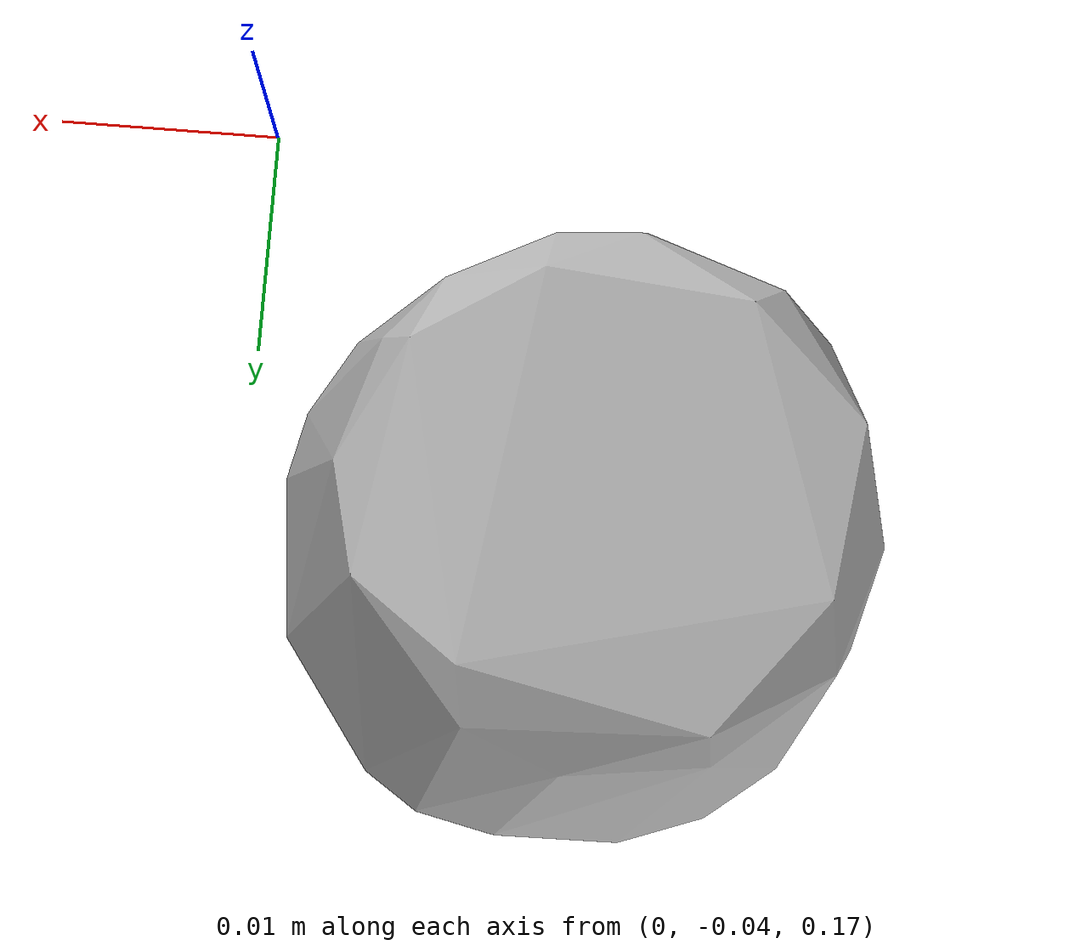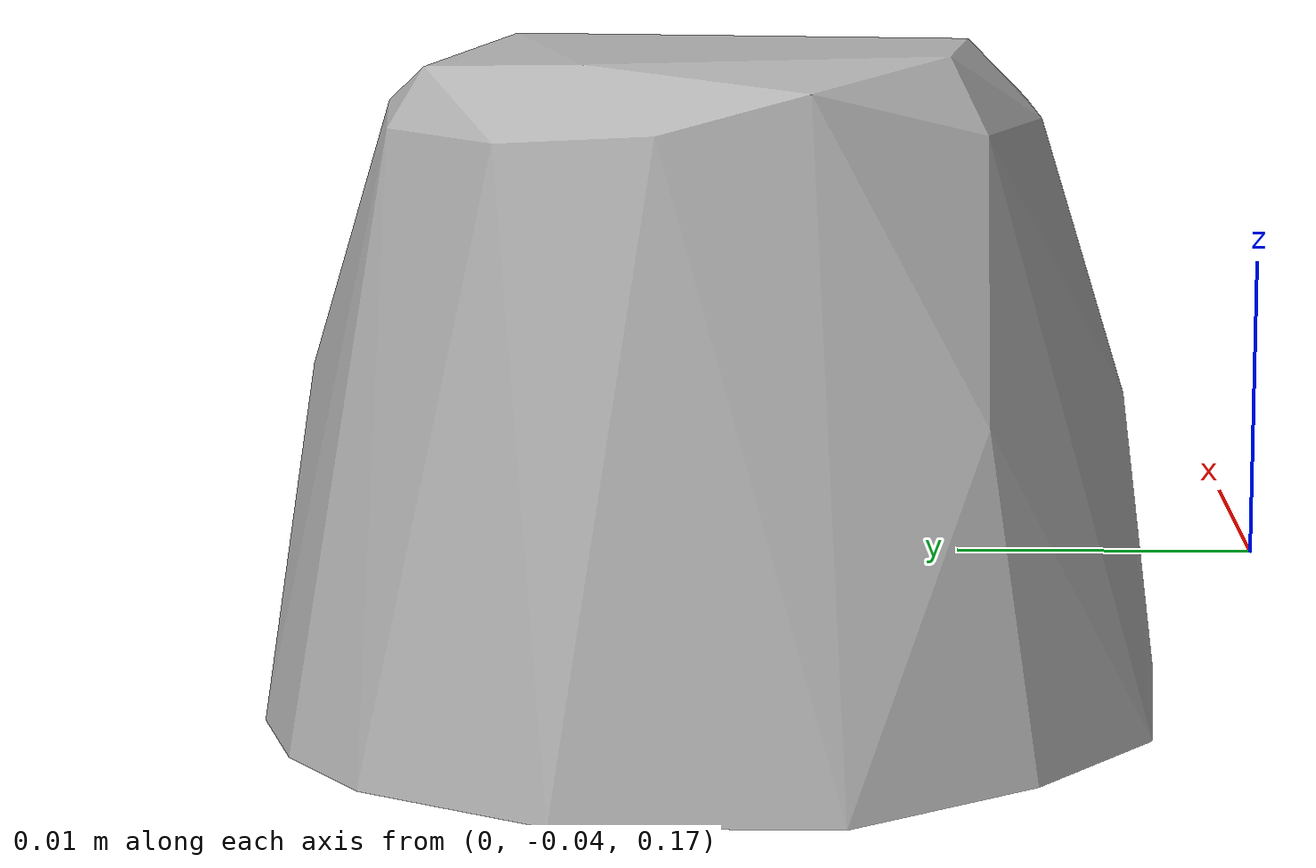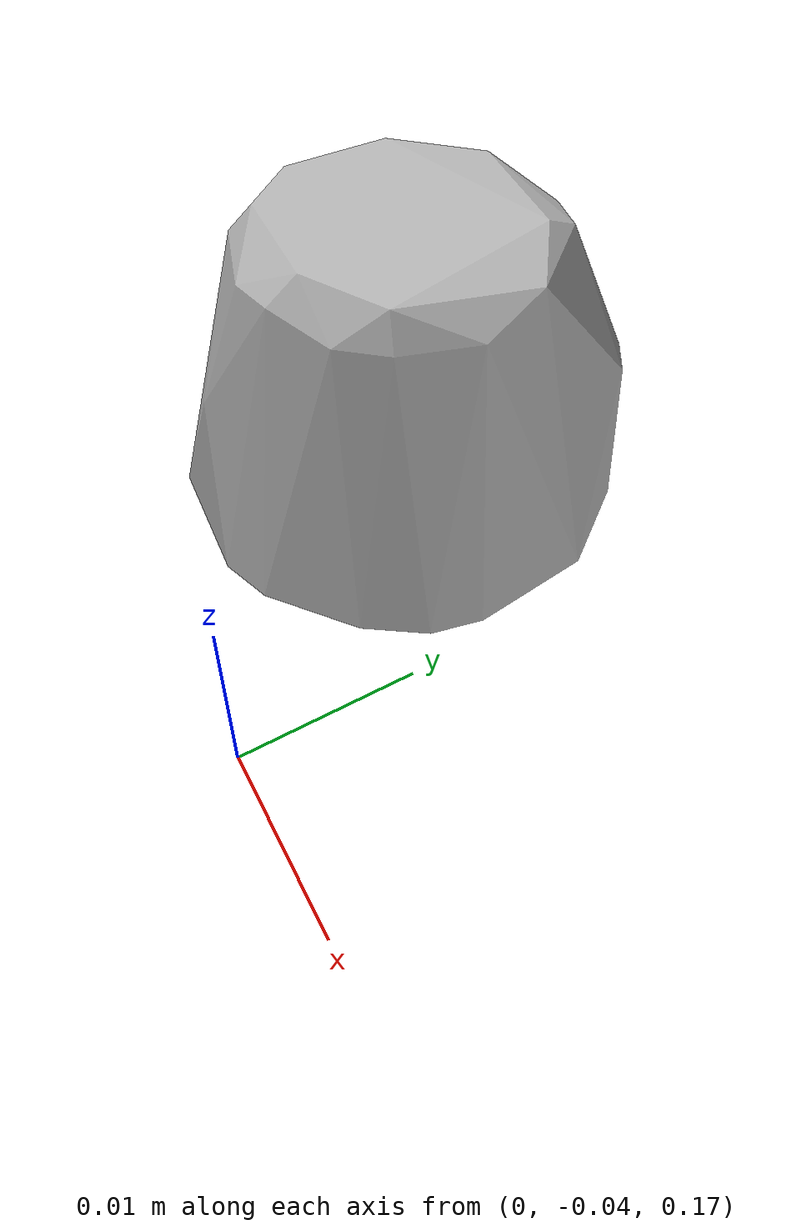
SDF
<?xml version="1.0"?>
<sdf version="1.7">
  <model name="006_mustard_bottle">

    <!-- This file was adapted from the original YCB object dataset. The
    simplified convex collision geometry was generated by Nicholas Pfaff using
    VHACD. -->

    <link name="base_link_mustard">
      <inertial>
        <inertia>
          <ixx>0.0010557</ixx>
          <ixy>5.478e-05</ixy>
          <ixz>-3.4872e-06</ixz>
          <iyy>0.001162</iyy>
          <iyz>-5.1815e-06</iyz>
          <izz>0.00030522</izz>
        </inertia>
        <mass>0.435</mass>
        <pose>-0.015 -0.0231 0.0751 0 0 0</pose>
      </inertial>

      <visual name="visual">
        <geometry>
          <mesh>
            <uri>package://drake_models/ycb/meshes/006_mustard_bottle_textured.gltf</uri>
          </mesh>
        </geometry>
      </visual>

      <collision name="collision_0">
        <geometry>
          <mesh>
            <drake:declare_convex/>
            <uri>package://manipulation/hydro/ycb_mustard_bottle_mesh_pieces/mesh_piece_005.obj</uri>
          </mesh>
        </geometry>

        <drake:proximity_properties>
          <drake:compliant_hydroelastic/>
          <drake:hydroelastic_modulus>1.0e8</drake:hydroelastic_modulus>
        </drake:proximity_properties>
      </collision>

      <collision name="collision_1">
        <geometry>
          <mesh>
            <drake:declare_convex/>
            <uri>package://manipulation/hydro/ycb_mustard_bottle_mesh_pieces/mesh_piece_008.obj</uri>
          </mesh>
        </geometry>

        <drake:proximity_properties>
          <drake:compliant_hydroelastic/>
          <drake:hydroelastic_modulus>1.0e8</drake:hydroelastic_modulus>
        </drake:proximity_properties>
      </collision>

      <collision name="collision_2">
          <geometry>
            <mesh>
              <drake:declare_convex/>
                <uri>package://manipulation/hydro/ycb_mustard_bottle_mesh_pieces/mesh_piece_006.obj</uri>
            </mesh>
          </geometry>

        <drake:proximity_properties>
            <drake:compliant_hydroelastic/>
            <drake:hydroelastic_modulus>1.0e8</drake:hydroelastic_modulus>
        </drake:proximity_properties>
      </collision>

      <collision name="collision_3">
        <geometry>
          <mesh>
            <drake:declare_convex/>
            <uri>ycb_mustard_bottle_mesh_pieces/mesh_piece_004.obj</uri>
          </mesh>
        </geometry>

        <drake:proximity_properties>
          <drake:compliant_hydroelastic/>
          <drake:hydroelastic_modulus>1.0e8</drake:hydroelastic_modulus>
        </drake:proximity_properties>
      </collision>

      <collision name="collision_4">
        <geometry>
          <mesh>
            <drake:declare_convex/>
            <uri>package://manipulation/hydro/ycb_mustard_bottle_mesh_pieces/mesh_piece_003.obj</uri>
          </mesh>
        </geometry>

        <drake:proximity_properties>
          <drake:compliant_hydroelastic/>
          <drake:hydroelastic_modulus>1.0e8</drake:hydroelastic_modulus>
        </drake:proximity_properties>
      </collision>

      <collision name="collision_5">
        <geometry>
          <mesh>
            <drake:declare_convex/>
            <uri>package://manipulation/hydro/ycb_mustard_bottle_mesh_pieces/mesh_piece_001.obj</uri>
          </mesh>
        </geometry>

        <drake:proximity_properties>
          <drake:compliant_hydroelastic/>
          <drake:hydroelastic_modulus>1.0e8</drake:hydroelastic_modulus>
        </drake:proximity_properties>
      </collision>

      <collision name="collision_6">
        <geometry>
          <mesh>
            <drake:declare_convex/>
            <uri>package://manipulation/hydro/ycb_mustard_bottle_mesh_pieces/mesh_piece_000.obj</uri>
          </mesh>
        </geometry>

        <drake:proximity_properties>
          <drake:compliant_hydroelastic/>
          <drake:hydroelastic_modulus>1.0e8</drake:hydroelastic_modulus>
        </drake:proximity_properties>
      </collision>

      <collision name="collision_7">
        <geometry>
          <mesh>
            <drake:declare_convex/>
            <uri>package://manipulation/hydro/ycb_mustard_bottle_mesh_pieces/mesh_piece_002.obj</uri>
          </mesh>
        </geometry>

        <drake:proximity_properties>
          <drake:compliant_hydroelastic/>
          <drake:hydroelastic_modulus>1.0e8</drake:hydroelastic_modulus>
        </drake:proximity_properties>
      </collision>

      <collision name="collision_8">
        <geometry>
          <mesh>
            <drake:declare_convex/>
            <uri>package://manipulation/hydro/ycb_mustard_bottle_mesh_pieces/mesh_piece_007.obj</uri>
          </mesh>
        </geometry>

        <drake:proximity_properties>
          <drake:compliant_hydroelastic/>
          <drake:hydroelastic_modulus>1.0e8</drake:hydroelastic_modulus>
        </drake:proximity_properties>
      </collision>

    </link>
  </model>
</sdf>
